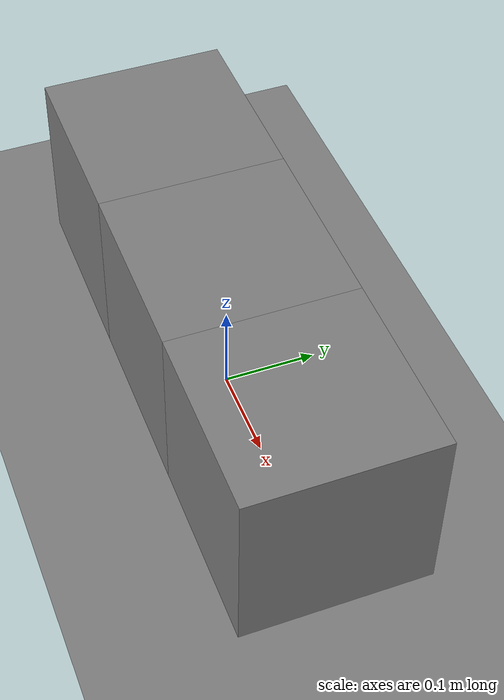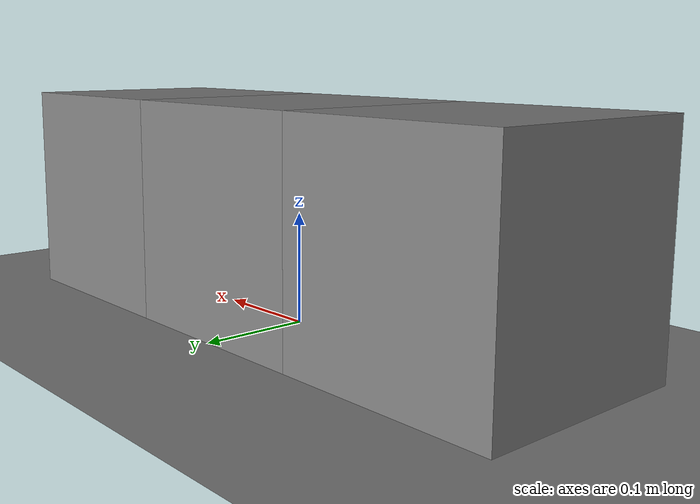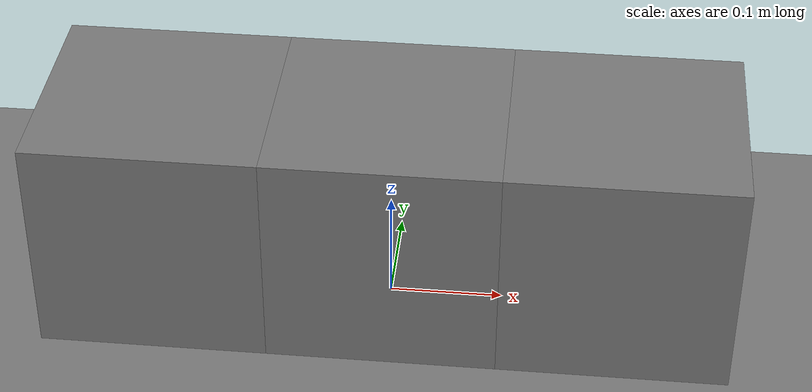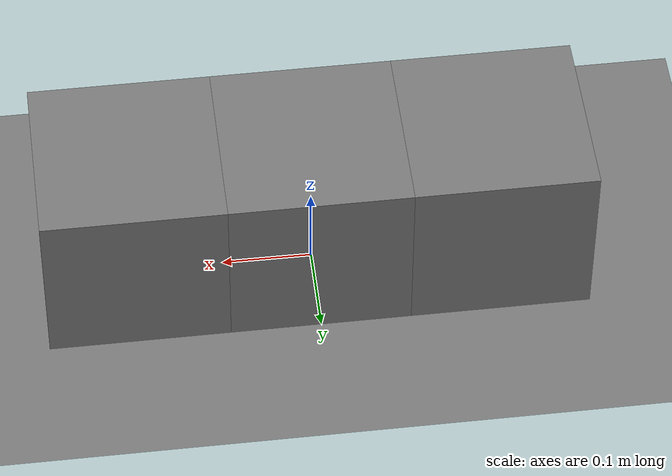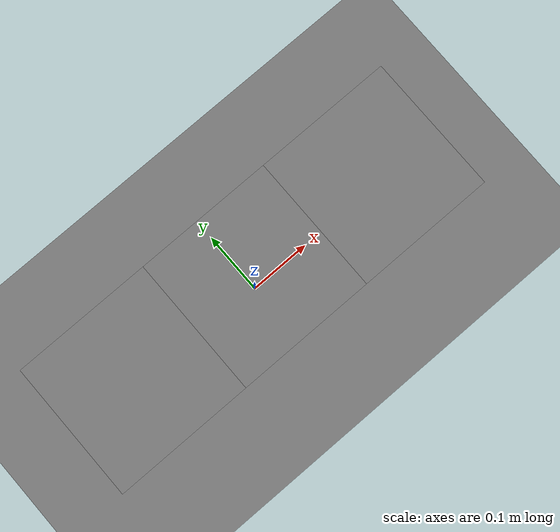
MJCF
<mujoco model="cascade">
  <option gravity="0 0 -9.81" timestep="0.002" sleep_tolerance="0.1">
    <flag sleep="enable"/>
  </option>
  <worldbody>
    <geom type="plane" size="5 5 0.1" solref="0.005 1.5"/>
    <body name="left" pos="-0.2 0 0.1">
      <freejoint/>
      <geom type="box" size="0.1 0.1 0.1" mass="1.0" solref="0.005 1.5"/>
    </body>
    <body name="middle" pos="0 0 0.1">
      <freejoint/>
      <geom type="box" size="0.1 0.1 0.1" mass="1.0" solref="0.005 1.5"/>
    </body>
    <body name="right" pos="0.2 0 0.1">
      <freejoint/>
      <geom type="box" size="0.1 0.1 0.1" mass="1.0" solref="0.005 1.5"/>
    </body>
  </worldbody>
</mujoco>
